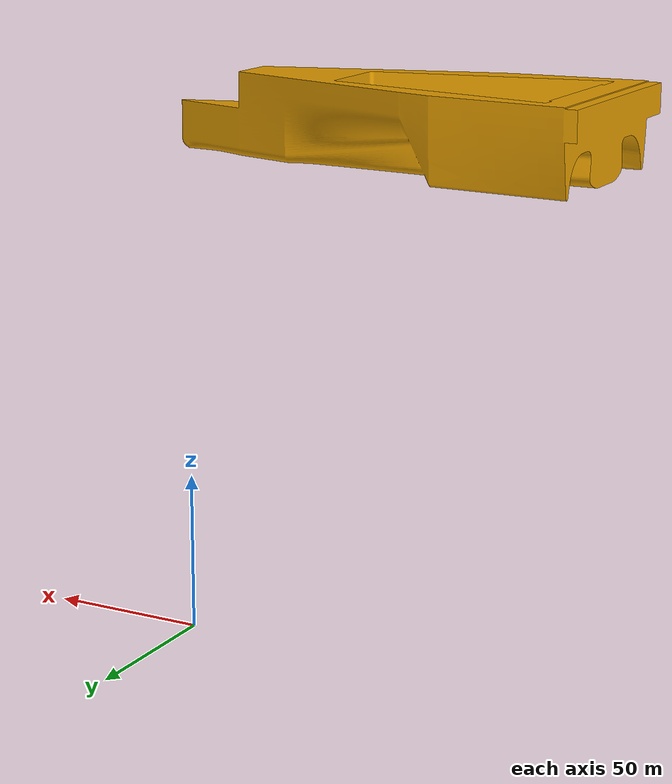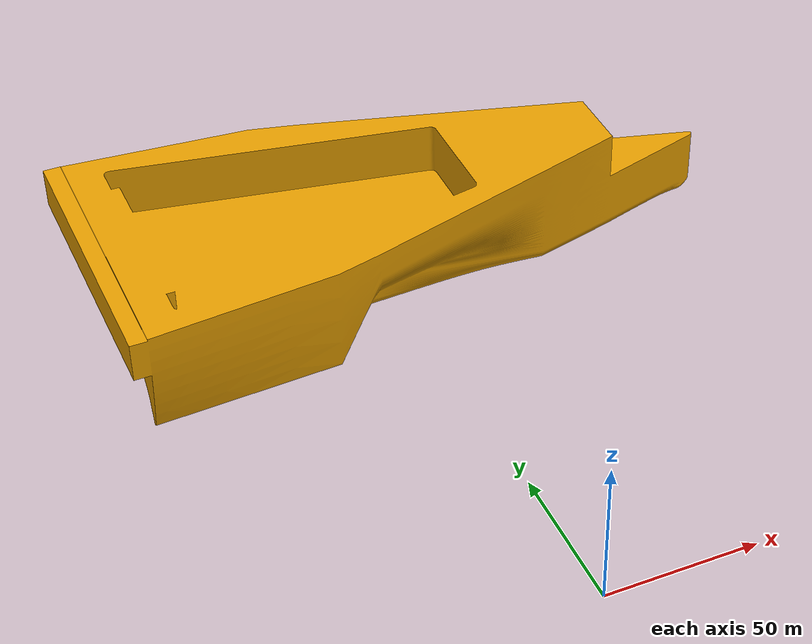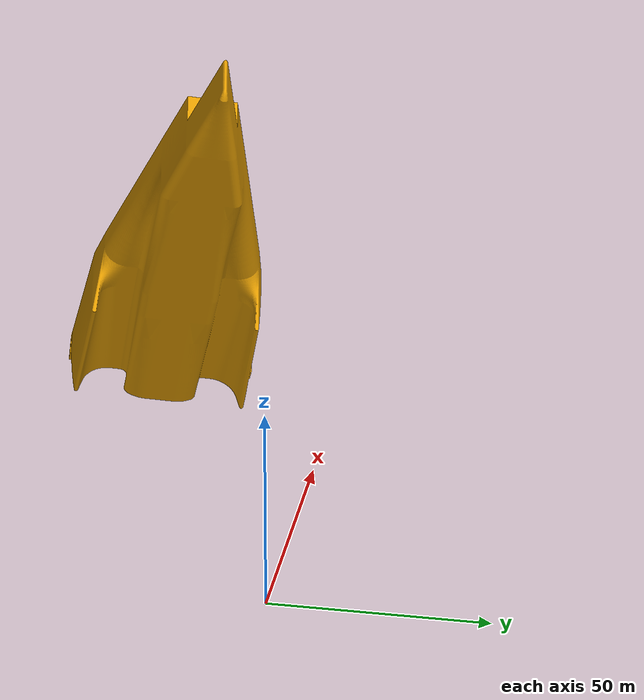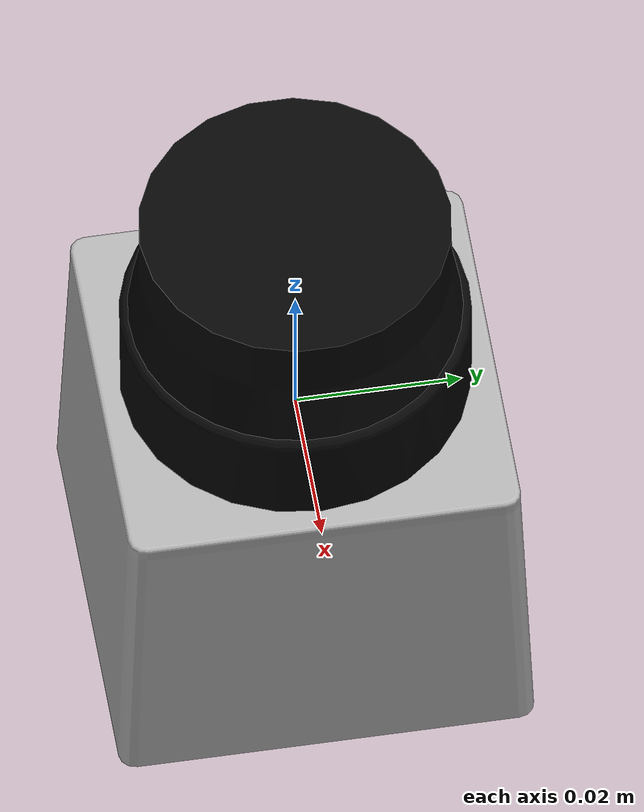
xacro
<?xml version="1.0"?>
<robot name="sensor_hokuyo" xmlns:xacro="http://ros.org/wiki/xacro">
 <xacro:include filename="$(find bluedragon_description)/urdf/bluedragon.urdf"/>
 <xacro:include filename="$(find bluedragon_description)/urdf/bluedragon_properties.urdf"/>

 <xacro:macro name="sensor_hokuyo" params="parent">
     <link name="laser">
   <collision>
     <origin xyz="0 0 0" rpy="0 0 0"/>
     <geometry>
        <box size="0.1 0.1 0.1"/>
     </geometry>
   </collision>
   <visual>
     <origin xyz="0 0 0" rpy="0 0 0"/>
     <geometry>
       <mesh filename="package://bluedragon_description/meshes/sensors/hokuyo.dae"/>
     </geometry>
   </visual>
   <inertial>
     <mass value="1e-5" />
     <origin xyz="0 0 0" rpy="0 0 0"/>
     <inertia ixx="1e-6" ixy="0" ixz="0" iyy="1e-6" iyz="0" izz="1e-6" />
   </inertial>
 </link>
 <joint name="hokuyo_joint" type="fixed">
   <axis xyz="0 0 1" />
   <origin xyz="0 0.22 0.05" rpy="0 0 1.570796"/>
   <parent link="${parent}"/>
   <child link="laser"/>
 </joint>
 </xacro:macro>
  </robot>

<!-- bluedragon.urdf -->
<robot name="bluedragon">

 <link name="base_footprint">
  <visual>
   <geometry>
    <mesh filename="package://bluedragon_description/urdf/bluedragon.dae"/>
   </geometry>
  </visual>
  <collision>
    <geometry>
     <mesh filename="package://bluedragon_description/urdf/bluedragon.dae"/>
    </geometry>
  </collision>
  <inertial>
   <mass value="15.0"/>
   <origin xyz="0 0 0"/>
   <inertia ixx="1" ixy="1" ixz="0" iyy="1" iyz="0" izz="1" />
  </inertial>
 </link>

 <link name="laser_link">
  <visual>
    <geometry>
     <mesh filename="package://bluedragon_description/meshes/hokuyo.dae"/>
    </geometry>
   <origin xyz="0.0 0.0 0.0" rpy="0.0 0.0 0.0" />
  </visual>
    <inertial>
      <mass value="0.000001" />
      <origin xyz="0 0 0" />
      <inertia ixx="0.0001" ixy="0.0" ixz="0.0"
        iyy="0.0001" iyz="0.0"
        izz="0.0001" />
    </inertial>
 </link>
 <joint name="laser_joint" type="fixed">
  <origin xyz="0.0 0.0 0.0" rpy="0.0 0.0 0.0" />
  <parent link="base_footprint"/>
  <child link="laser_link"/>
 </joint>

 <link name="ultrasound1_link">
  <visual>
    <geometry>
     <cylinder length="0.02" radius="0.01"/>
    </geometry>
   <origin xyz="0.0 0.0 0.0" rpy="0.0 0.0 0.0" />
  </visual>
    <inertial>
      <mass value="0.000001" />
      <origin xyz="0 0 0" />
      <inertia ixx="0.0001" ixy="0.0" ixz="0.0"
        iyy="0.0001" iyz="0.0"
        izz="0.0001" />
    </inertial>
 </link>
 <joint name="ultrasound1_joint" type="fixed">
  <origin xyz="0.0 0.0 0.0" rpy="0.0 0.0 0.0" />
  <parent link="base_footprint"/>
  <child link="ultrasound1_link"/>
 </joint>

 <link name="ultrasound2_link">
  <visual>
    <geometry>
     <cylinder length="0.02" radius="0.01"/>
    </geometry>
   <origin xyz="0.0 0.0 0.0" rpy="0.0 0.0 0.0" />
  </visual>
    <inertial>
      <mass value="0.000001" />
      <origin xyz="0 0 0" />
      <inertia ixx="0.0001" ixy="0.0" ixz="0.0"
        iyy="0.0001" iyz="0.0"
        izz="0.0001" />
    </inertial>
 </link>
 <joint name="ultrasound2_joint" type="fixed">
  <origin xyz="0.0 0.0 0.0" rpy="0.0 0.0 0.0" />
  <parent link="base_footprint"/>
  <child link="ultrasound2_link"/>
 </joint>
</robot>
